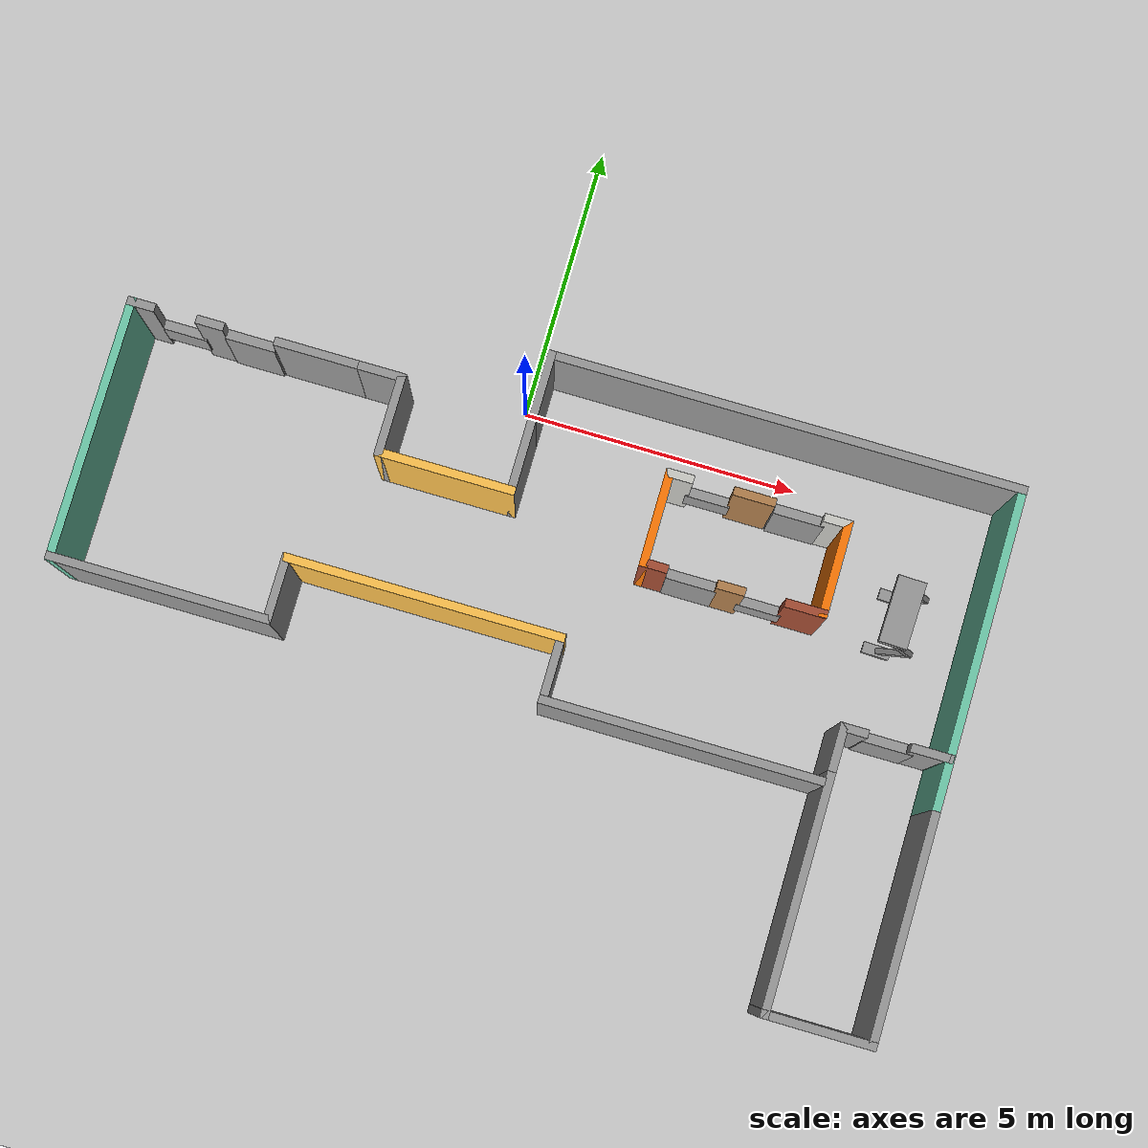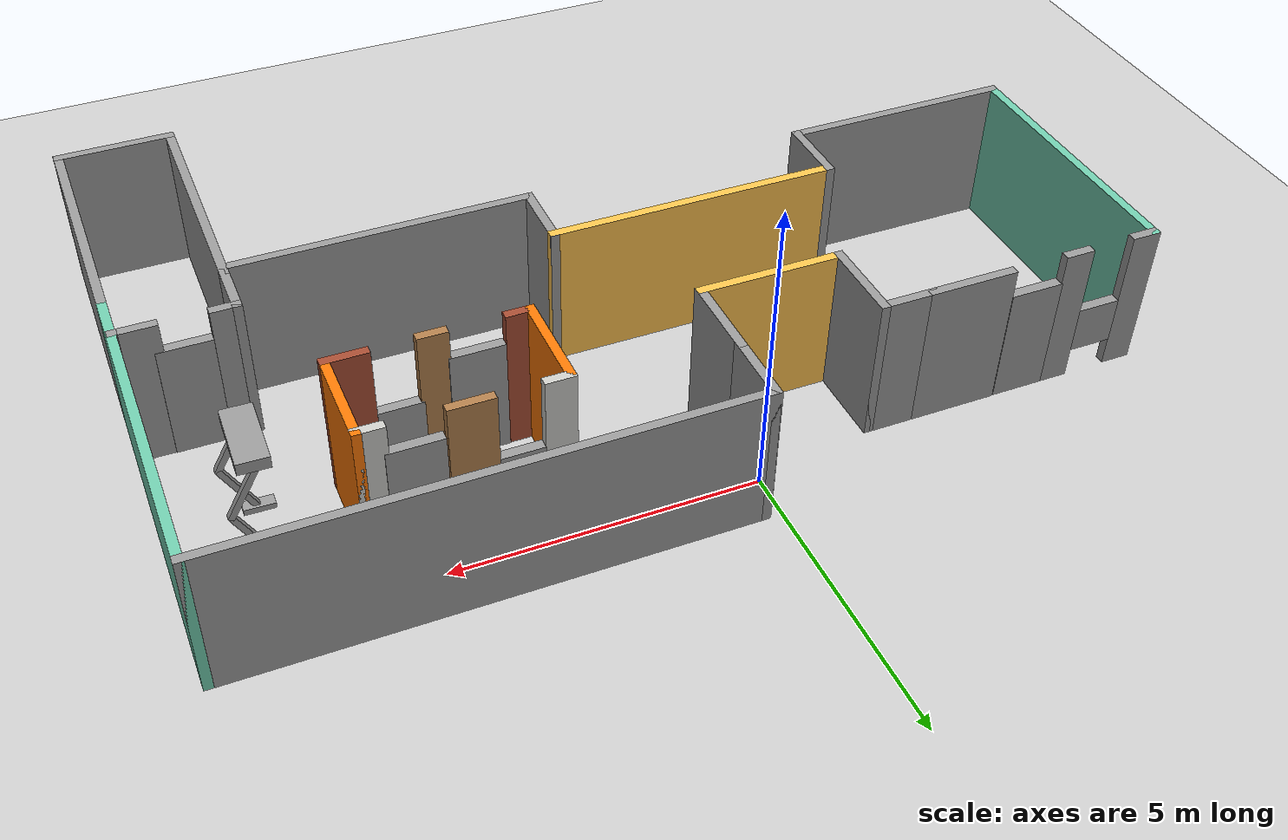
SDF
<sdf version="1.7">
 <world name="default">
  <model name="ground_plane">
   <static>1</static>
   <link name="link">
    <collision name="collision">
     <geometry><plane><normal>0 0 1</normal><size>100 100</size></plane></geometry>
     <surface>
      <contact><collide_bitmask>65535</collide_bitmask></contact>
      <friction><ode><mu>100</mu><mu2>50</mu2></ode></friction>
     </surface>
    </collision>
    <visual name="visual">
     <cast_shadows>0</cast_shadows>
     <geometry><plane><normal>0 0 1</normal><size>100 100</size></plane></geometry>
     <material>
      <script><uri>file://media/materials/scripts/gazebo.material</uri><name>Gazebo/Grey</name></script>
     </material>
    </visual>
   </link>
  </model>
  <model name="Building">
   <pose>0.849011 -4.17866 0 0 -0 0</pose>
   <link name="Door_0">
    <collision name="Door_0_Collision">
     <geometry><box><size>0.9 0.17 2</size></box></geometry>
     <pose>0 0 1 0 -0 0</pose>
    </collision>
    <visual name="Door_0_Visual">
     <pose>0 0 1 0 -0 0</pose>
     <geometry><box><size>0.9 0.17 2</size></box></geometry>
     <material>
      <script><uri>file://media/materials/scripts/gazebo.material</uri><name>Gazebo/Grey</name></script>
     </material>
    </visual>
    <pose>-5.67659 3.73172 0 0 -0 0</pose>
   </link>
   <link name="Door_1">
    <collision name="Door_1_Collision">
     <geometry><box><size>0.9 0.17 2</size></box></geometry>
     <pose>0 0 1 0 -0 0</pose>
    </collision>
    <visual name="Door_1_Visual">
     <pose>0 0 1 0 -0 0</pose>
     <geometry><box><size>0.9 0.17 2</size></box></geometry>
     <material>
      <script><uri>file://media/materials/scripts/gazebo.material</uri><name>Gazebo/Grey</name></script>
     </material>
    </visual>
    <pose>2.80479 1.84268 0 0 -0 0</pose>
   </link>
   <link name="Door_2">
    <collision name="Door_2_Collision">
     <geometry><box><size>0.9 0.17 2</size></box></geometry>
     <pose>0 0 1 0 -0 0</pose>
    </collision>
    <visual name="Door_2_Visual">
     <pose>0 0 1 0 -0 0</pose>
     <geometry><box><size>0.9 0.17 2</size></box></geometry>
     <material>
      <script><uri>file://media/materials/scripts/gazebo.material</uri><name>Gazebo/Grey</name></script>
     </material>
    </visual>
    <pose>4.27081 3.44109 0 0 -0 0</pose>
   </link>
   <link name="Door_3">
    <collision name="Door_3_Collision">
     <geometry><box><size>0.9 0.17 2</size></box></geometry>
     <pose>0 0 1 0 -0 0</pose>
    </collision>
    <visual name="Door_3_Visual">
     <pose>0 0 1 0 -0 0</pose>
     <geometry><box><size>0.9 0.17 2</size></box></geometry>
     <material>
      <script><uri>file://media/materials/scripts/gazebo.material</uri><name>Gazebo/Grey</name></script>
     </material>
    </visual>
    <pose>6.77567 0.089826 0 0 -0 0</pose>
   </link>
   <link name="Wall_0">
    <collision name="Wall_0_Collision">
     <geometry><box><size>4.75 0.15 2.5</size></box></geometry>
     <pose>0 0 1.25 0 -0 0</pose>
    </collision>
    <visual name="Wall_0_Visual">
     <pose>0 0 1.25 0 -0 0</pose>
     <geometry><box><size>4.75 0.15 2.5</size></box></geometry>
     <material>
      <script><uri>file://media/materials/scripts/gazebo.material</uri><name>Gazebo/Grey</name></script>
      <ambient>0.435294 0.796078 0.67451 1</ambient>
     </material>
     <meta><layer>0</layer></meta>
    </visual>
    <pose>-7.76657 1.42597 0 0 -0 -1.5708</pose>
   </link>
   <link name="Wall_1">
    <collision name="Wall_1_Collision">
     <geometry><box><size>4 0.15 2.5</size></box></geometry>
     <pose>0 0 1.25 0 -0 0</pose>
    </collision>
    <visual name="Wall_1_Visual">
     <pose>0 0 1.25 0 -0 0</pose>
     <geometry><box><size>4 0.15 2.5</size></box></geometry>
     <material>
      <script><uri>file://media/materials/scripts/gazebo.material</uri><name>Gazebo/Grey</name></script>
      <ambient>1 1 1 1</ambient>
     </material>
     <meta><layer>0</layer></meta>
    </visual>
    <pose>-5.84157 -0.874025 0 0 -0 0</pose>
   </link>
   <link name="Wall_11">
    <collision name="Wall_11_Collision">
     <geometry><box><size>1.5 0.15 2.5</size></box></geometry>
     <pose>0 0 1.25 0 -0 0</pose>
    </collision>
    <visual name="Wall_11_Visual">
     <pose>0 0 1.25 0 -0 0</pose>
     <geometry><box><size>1.5 0.15 2.5</size></box></geometry>
     <material>
      <script><uri>file://media/materials/scripts/gazebo.material</uri><name>Gazebo/Grey</name></script>
      <ambient>1 1 1 1</ambient>
     </material>
     <meta><layer>0</layer></meta>
    </visual>
    <pose>-4.45843 3.75 0 0 -0 0</pose>
   </link>
   <link name="Wall_12">
    <collision name="Wall_12_Collision">
     <geometry><box><size>1 0.15 2.5</size></box></geometry>
     <pose>0 0 1.25 0 -0 0</pose>
    </collision>
    <visual name="Wall_12_Visual">
     <pose>0 0 1.25 0 -0 0</pose>
     <geometry><box><size>1 0.15 2.5</size></box></geometry>
     <material>
      <script><uri>file://media/materials/scripts/gazebo.material</uri><name>Gazebo/Grey</name></script>
      <ambient>1 1 1 1</ambient>
     </material>
     <meta><layer>0</layer></meta>
    </visual>
    <pose>-3.35843 3.75 0 0 -0 0</pose>
   </link>
   <link name="Wall_13">
    <collision name="Wall_13_Collision">
     <geometry><box><size>1.5 0.15 2.5</size></box></geometry>
     <pose>0 0 1.25 0 -0 0</pose>
    </collision>
    <visual name="Wall_13_Visual">
     <pose>0 0 1.25 0 -0 0</pose>
     <geometry><box><size>1.5 0.15 2.5</size></box></geometry>
     <material>
      <script><uri>file://media/materials/scripts/gazebo.material</uri><name>Gazebo/Grey</name></script>
      <ambient>1 1 1 1</ambient>
     </material>
     <meta><layer>0</layer></meta>
    </visual>
    <pose>-2.93343 3.075 0 0 -0 -1.5708</pose>
   </link>
   <link name="Wall_14">
    <collision name="Wall_14_Collision">
     <geometry><box><size>2.5 0.15 2.5</size></box></geometry>
     <pose>0 0 1.25 0 -0 0</pose>
    </collision>
    <visual name="Wall_14_Visual">
     <pose>0 0 1.25 0 -0 0</pose>
     <geometry><box><size>2.5 0.15 2.5</size></box></geometry>
     <material>
      <script><uri>file://media/materials/scripts/gazebo.material</uri><name>Gazebo/Grey</name></script>
      <ambient>1 0.764706 0.305882 1</ambient>
     </material>
     <meta><layer>0</layer></meta>
    </visual>
    <pose>-1.75843 2.4 0 0 -0 0</pose>
   </link>
   <link name="Wall_15">
    <collision name="Wall_15_Collision">
     <geometry><box><size>1.5 0.15 2.5</size></box></geometry>
     <pose>0 0 1.25 0 -0 0</pose>
    </collision>
    <visual name="Wall_15_Visual">
     <pose>0 0 1.25 0 -0 0</pose>
     <geometry><box><size>1.5 0.15 2.5</size></box></geometry>
     <material>
      <script><uri>file://media/materials/scripts/gazebo.material</uri><name>Gazebo/Grey</name></script>
      <ambient>1 1 1 1</ambient>
     </material>
     <meta><layer>0</layer></meta>
    </visual>
    <pose>-0.583428 3.075 0 0 -0 1.5708</pose>
   </link>
   <link name="Wall_16">
    <collision name="Wall_16_Collision">
     <geometry><box><size>1.25 0.15 2.5</size></box></geometry>
     <pose>0 0 1.25 0 -0 0</pose>
    </collision>
    <visual name="Wall_16_Visual">
     <pose>0 0 1.25 0 -0 0</pose>
     <geometry><box><size>1.25 0.15 2.5</size></box></geometry>
     <material>
      <script><uri>file://media/materials/scripts/gazebo.material</uri><name>Gazebo/Grey</name></script>
      <ambient>1 1 1 1</ambient>
     </material>
     <meta><layer>0</layer></meta>
    </visual>
    <pose>-0.583428 4.3 0 0 -0 1.5708</pose>
   </link>
   <link name="Wall_17">
    <collision name="Wall_17_Collision">
     <geometry><box><size>8.5 0.15 2.5</size></box></geometry>
     <pose>0 0 1.25 0 -0 0</pose>
    </collision>
    <visual name="Wall_17_Visual">
     <pose>0 0 1.25 0 -0 0</pose>
     <geometry><box><size>8.5 0.15 2.5</size></box></geometry>
     <material>
      <script><uri>file://media/materials/scripts/gazebo.material</uri><name>Gazebo/Grey</name></script>
      <ambient>1 1 1 1</ambient>
     </material>
     <meta><layer>0</layer></meta>
    </visual>
    <pose>3.59157 4.85 0 0 -0 0</pose>
   </link>
   <link name="Wall_18">
    <collision name="Wall_18_Collision">
     <geometry><box><size>5.75 0.15 2.5</size></box></geometry>
     <pose>0 0 1.25 0 -0 0</pose>
    </collision>
    <visual name="Wall_18_Visual">
     <pose>0 0 1.25 0 -0 0</pose>
     <geometry><box><size>5.75 0.15 2.5</size></box></geometry>
     <material>
      <script><uri>file://media/materials/scripts/gazebo.material</uri><name>Gazebo/Grey</name></script>
      <ambient>0.435294 0.796078 0.67451 1</ambient>
     </material>
     <meta><layer>0</layer></meta>
    </visual>
    <pose>7.76657 2.05 0 0 -0 -1.5708</pose>
   </link>
   <link name="Wall_19">
    <collision name="Wall_19_Collision">
     <geometry><box><size>4.25 0.15 2.5</size></box></geometry>
     <pose>0 0 1.25 0 -0 0</pose>
    </collision>
    <visual name="Wall_19_Visual">
     <pose>0 0 1.25 0 -0 0</pose>
     <geometry><box><size>4.25 0.15 2.5</size></box></geometry>
     <material>
      <script><uri>file://media/materials/scripts/gazebo.material</uri><name>Gazebo/Grey</name></script>
      <ambient>1 1 1 1</ambient>
     </material>
     <meta><layer>0</layer></meta>
    </visual>
    <pose>7.76657 -2.8 0 0 -0 -1.5708</pose>
   </link>
   <link name="Wall_2">
    <collision name="Wall_2_Collision">
     <geometry><box><size>1.25 0.15 2.5</size></box></geometry>
     <pose>0 0 1.25 0 -0 0</pose>
    </collision>
    <visual name="Wall_2_Visual">
     <pose>0 0 1.25 0 -0 0</pose>
     <geometry><box><size>1.25 0.15 2.5</size></box></geometry>
     <material>
      <script><uri>file://media/materials/scripts/gazebo.material</uri><name>Gazebo/Grey</name></script>
      <ambient>1 1 1 1</ambient>
     </material>
     <meta><layer>0</layer></meta>
    </visual>
    <pose>-3.91657 -0.324024 0 0 -0 1.5708</pose>
   </link>
   <link name="Wall_20">
    <collision name="Wall_20_Collision">
     <geometry><box><size>2 0.15 2.5</size></box></geometry>
     <pose>0 0 1.25 0 -0 0</pose>
    </collision>
    <visual name="Wall_20_Visual">
     <pose>0 0 1.25 0 -0 0</pose>
     <geometry><box><size>2 0.15 2.5</size></box></geometry>
     <material>
      <script><uri>file://media/materials/scripts/gazebo.material</uri><name>Gazebo/Grey</name></script>
      <ambient>1 1 1 1</ambient>
     </material>
     <meta><layer>0</layer></meta>
    </visual>
    <pose>6.84157 -4.85 0 0 -0 3.14159</pose>
   </link>
   <link name="Wall_21">
    <collision name="Wall_21_Collision">
     <geometry><box><size>4.25 0.15 2.5</size></box></geometry>
     <pose>0 0 1.25 0 -0 0</pose>
    </collision>
    <visual name="Wall_21_Visual">
     <pose>0 0 1.25 0 -0 0</pose>
     <geometry><box><size>4.25 0.15 2.5</size></box></geometry>
     <material>
      <script><uri>file://media/materials/scripts/gazebo.material</uri><name>Gazebo/Grey</name></script>
      <ambient>1 1 1 1</ambient>
     </material>
     <meta><layer>0</layer></meta>
    </visual>
    <pose>5.91657 -2.8 0 0 -0 1.5708</pose>
   </link>
   <link name="Wall_23">
    <collision name="Wall_23_Collision">
     <geometry><box><size>0.5 0.15 2.5</size></box></geometry>
     <pose>0 0 1.25 0 -0 0</pose>
    </collision>
    <visual name="Wall_23_Visual">
     <pose>0 0 1.25 0 -0 0</pose>
     <geometry><box><size>0.5 0.15 2.5</size></box></geometry>
     <material>
      <script><uri>file://media/materials/scripts/gazebo.material</uri><name>Gazebo/Wood</name></script>
      <ambient>1 1 1 1</ambient>
     </material>
     <meta><layer>0</layer></meta>
    </visual>
    <pose>3.46611 1.83381 0 0 -0 0</pose>
   </link>
   <link name="Wall_25">
    <collision name="Wall_25_Collision">
     <geometry><box><size>0.75 0.15 2.5</size></box></geometry>
     <pose>0 0 1.25 0 -0 0</pose>
    </collision>
    <visual name="Wall_25_Visual">
     <pose>0 0 1.25 0 -0 0</pose>
     <geometry><box><size>0.75 0.15 2.5</size></box></geometry>
     <material>
      <script><uri>file://media/materials/scripts/gazebo.material</uri><name>Gazebo/Wood</name></script>
      <ambient>1 1 1 1</ambient>
     </material>
     <meta><layer>0</layer></meta>
    </visual>
    <pose>3.42586 3.45216 0 0 -0 0</pose>
   </link>
   <link name="Wall_27">
    <collision name="Wall_27_Collision">
     <geometry><box><size>0.5 0.15 2.5</size></box></geometry>
     <pose>0 0 1.25 0 -0 0</pose>
    </collision>
    <visual name="Wall_27_Visual">
     <pose>0 0 1.25 0 -0 0</pose>
     <geometry><box><size>0.5 0.15 2.5</size></box></geometry>
     <material>
      <script><uri>file://media/materials/scripts/gazebo.material</uri><name>Gazebo/CeilingTiled</name></script>
      <ambient>1 1 1 1</ambient>
     </material>
     <meta><layer>0</layer></meta>
    </visual>
    <pose>2.10086 3.44216 0 0 -0 3.14159</pose>
   </link>
   <link name="Wall_28">
    <collision name="Wall_28_Collision">
     <geometry><box><size>1.75 0.15 2.5</size></box></geometry>
     <pose>0 0 1.25 0 -0 0</pose>
    </collision>
    <visual name="Wall_28_Visual">
     <pose>0 0 1.25 0 -0 0</pose>
     <geometry><box><size>1.75 0.15 2.5</size></box></geometry>
     <material>
      <script><uri>file://media/materials/scripts/gazebo.material</uri><name>Gazebo/Grey</name></script>
      <ambient>0.996078 0.47451 0.0196078 1</ambient>
     </material>
     <meta><layer>0</layer></meta>
    </visual>
    <pose>1.92586 2.64216 0 0 -0 -1.5708</pose>
   </link>
   <link name="Wall_29">
    <collision name="Wall_29_Collision">
     <geometry><box><size>0.5 0.15 2.5</size></box></geometry>
     <pose>0 0 1.25 0 -0 0</pose>
    </collision>
    <visual name="Wall_29_Visual">
     <pose>0 0 1.25 0 -0 0</pose>
     <geometry><box><size>0.5 0.15 2.5</size></box></geometry>
     <material>
      <script><uri>file://media/materials/scripts/gazebo.material</uri><name>Gazebo/Bricks</name></script>
      <ambient>1 1 1 1</ambient>
     </material>
     <meta><layer>0</layer></meta>
    </visual>
    <pose>2.10086 1.84216 0 0 -0 0</pose>
   </link>
   <link name="Wall_3">
    <collision name="Wall_3_Collision">
     <geometry><box><size>5 0.15 2.5</size></box></geometry>
     <pose>0 0 1.25 0 -0 0</pose>
    </collision>
    <visual name="Wall_3_Visual">
     <pose>0 0 1.25 0 -0 0</pose>
     <geometry><box><size>5 0.15 2.5</size></box></geometry>
     <material>
      <script><uri>file://media/materials/scripts/gazebo.material</uri><name>Gazebo/Grey</name></script>
      <ambient>1 0.764706 0.305882 1</ambient>
     </material>
     <meta><layer>0</layer></meta>
    </visual>
    <pose>-1.49157 0.225975 0 0 -0 0</pose>
   </link>
   <link name="Wall_31">
    <collision name="Wall_31_Collision">
     <geometry><box><size>0.5 0.15 2.5</size></box></geometry>
     <pose>0 0 1.25 0 -0 0</pose>
    </collision>
    <visual name="Wall_31_Visual">
     <pose>0 0 1.25 0 -0 0</pose>
     <geometry><box><size>0.5 0.15 2.5</size></box></geometry>
     <material>
      <script><uri>file://media/materials/scripts/gazebo.material</uri><name>Gazebo/CeilingTiled</name></script>
      <ambient>1 1 1 1</ambient>
     </material>
     <meta><layer>0</layer></meta>
    </visual>
    <pose>4.90086 3.44216 0 0 -0 0</pose>
   </link>
   <link name="Wall_32">
    <collision name="Wall_32_Collision">
     <geometry><box><size>1.73 0.15 2.5</size></box></geometry>
     <pose>0 0 1.25 0 -0 0</pose>
    </collision>
    <visual name="Wall_32_Visual">
     <pose>0 0 1.25 0 -0 0</pose>
     <geometry><box><size>1.73 0.15 2.5</size></box></geometry>
     <material>
      <script><uri>file://media/materials/scripts/gazebo.material</uri><name>Gazebo/Grey</name></script>
      <ambient>0.996078 0.47451 0.0196078 1</ambient>
     </material>
     <meta><layer>0</layer></meta>
    </visual>
    <pose>5.07586 2.65216 0 0 -0 -1.5708</pose>
   </link>
   <link name="Wall_33">
    <collision name="Wall_33_Collision">
     <geometry><box><size>0.75 0.15 2.5</size></box></geometry>
     <pose>0 0 1.25 0 -0 0</pose>
    </collision>
    <visual name="Wall_33_Visual">
     <pose>0 0 1.25 0 -0 0</pose>
     <geometry><box><size>0.75 0.15 2.5</size></box></geometry>
     <material>
      <script><uri>file://media/materials/scripts/gazebo.material</uri><name>Gazebo/Bricks</name></script>
      <ambient>1 1 1 1</ambient>
     </material>
     <meta><layer>0</layer></meta>
    </visual>
    <pose>4.77586 1.85216 0 0 -0 3.14159</pose>
   </link>
   <link name="Wall_35">
    <collision name="Wall_35_Collision">
     <geometry><box><size>1 0.15 2.5</size></box></geometry>
     <pose>0 0 1.25 0 -0 0</pose>
    </collision>
    <visual name="Wall_35_Visual">
     <pose>0 0 1.25 0 -0 0</pose>
     <geometry><box><size>1 0.15 2.5</size></box></geometry>
     <material>
      <script><uri>file://media/materials/scripts/gazebo.material</uri><name>Gazebo/Grey</name></script>
      <ambient>1 1 1 1</ambient>
     </material>
     <meta><layer>0</layer></meta>
    </visual>
    <pose>5.91657 -0.325 0 0 -0 1.5708</pose>
   </link>
   <link name="Wall_36">
    <collision name="Wall_36_Collision">
     <geometry><box><size>0.5 0.15 2.5</size></box></geometry>
     <pose>0 0 1.25 0 -0 0</pose>
    </collision>
    <visual name="Wall_36_Visual">
     <pose>0 0 1.25 0 -0 0</pose>
     <geometry><box><size>0.5 0.15 2.5</size></box></geometry>
     <material>
      <script><uri>file://media/materials/scripts/gazebo.material</uri><name>Gazebo/Grey</name></script>
      <ambient>1 1 1 1</ambient>
     </material>
     <meta><layer>0</layer></meta>
    </visual>
    <pose>6.09157 0.1 0 0 -0 0</pose>
   </link>
   <link name="Wall_38">
    <collision name="Wall_38_Collision">
     <geometry><box><size>0.75 0.15 2.5</size></box></geometry>
     <pose>0 0 1.25 0 -0 0</pose>
    </collision>
    <visual name="Wall_38_Visual">
     <pose>0 0 1.25 0 -0 0</pose>
     <geometry><box><size>0.75 0.15 2.5</size></box></geometry>
     <material>
      <script><uri>file://media/materials/scripts/gazebo.material</uri><name>Gazebo/Grey</name></script>
      <ambient>1 1 1 1</ambient>
     </material>
     <meta><layer>0</layer></meta>
    </visual>
    <pose>7.45865 0.087042 0 0 -0 0</pose>
   </link>
   <link name="Wall_39">
    <collision name="Wall_39_Collision">
     <geometry><box><size>0.15 0.15 2.5</size></box></geometry>
     <pose>0 0 1.25 0 -0 0</pose>
    </collision>
    <visual name="Wall_39_Visual">
     <pose>0 0 1.25 0 -0 0</pose>
     <geometry><box><size>0.15 0.15 2.5</size></box></geometry>
     <material>
      <script><uri>file://media/materials/scripts/gazebo.material</uri><name>Gazebo/Grey</name></script>
      <ambient>1 1 1 1</ambient>
     </material>
     <meta><layer>0</layer></meta>
    </visual>
    <pose>7.74995 0.087042 0 0 -0 0</pose>
   </link>
   <link name="Wall_4">
    <collision name="Wall_4_Collision">
     <geometry><box><size>1.25 0.15 2.5</size></box></geometry>
     <pose>0 0 1.25 0 -0 0</pose>
    </collision>
    <visual name="Wall_4_Visual">
     <pose>0 0 1.25 0 -0 0</pose>
     <geometry><box><size>1.25 0.15 2.5</size></box></geometry>
     <material>
      <script><uri>file://media/materials/scripts/gazebo.material</uri><name>Gazebo/Grey</name></script>
      <ambient>1 1 1 1</ambient>
     </material>
     <meta><layer>0</layer></meta>
    </visual>
    <pose>0.933427 -0.324024 0 0 -0 -1.5708</pose>
   </link>
   <link name="Wall_40">
    <collision name="Wall_40_Collision">
     <geometry><box><size>0.15 0.15 2.5</size></box></geometry>
     <pose>0 0 1.25 0 -0 0</pose>
    </collision>
    <visual name="Wall_40_Visual">
     <pose>0 0 1.25 0 -0 0</pose>
     <geometry><box><size>0.15 0.15 2.5</size></box></geometry>
     <material>
      <script><uri>file://media/materials/scripts/gazebo.material</uri><name>Gazebo/Grey</name></script>
      <ambient>1 1 1 1</ambient>
     </material>
     <meta><layer>0</layer></meta>
    </visual>
    <pose>7.74995 0.087042 0 0 -0 0</pose>
   </link>
   <link name="Wall_41">
    <collision name="Wall_41_Collision">
     <geometry><box><size>0.15 0.15 2.5</size></box></geometry>
     <pose>0 0 1.25 0 -0 0</pose>
    </collision>
    <visual name="Wall_41_Visual">
     <pose>0 0 1.25 0 -0 0</pose>
     <geometry><box><size>0.15 0.15 2.5</size></box></geometry>
     <material>
      <script><uri>file://media/materials/scripts/gazebo.material</uri><name>Gazebo/Grey</name></script>
      <ambient>1 1 1 1</ambient>
     </material>
     <meta><layer>0</layer></meta>
    </visual>
    <pose>7.74995 0.087042 0 0 -0 0</pose>
   </link>
   <link name="Wall_5">
    <collision name="Wall_5_Collision">
     <geometry><box><size>5 0.15 2.5</size></box></geometry>
     <pose>0 0 1.25 0 -0 0</pose>
    </collision>
    <visual name="Wall_5_Visual">
     <pose>0 0 1.25 0 -0 0</pose>
     <geometry><box><size>5 0.15 2.5</size></box></geometry>
     <material>
      <script><uri>file://media/materials/scripts/gazebo.material</uri><name>Gazebo/Grey</name></script>
      <ambient>1 1 1 1</ambient>
     </material>
     <meta><layer>0</layer></meta>
    </visual>
    <pose>3.35843 -0.874025 0 0 -0 0</pose>
   </link>
   <link name="Wall_7">
    <collision name="Wall_7_Collision">
     <geometry><box><size>0.5 0.15 2.5</size></box></geometry>
     <pose>0 0 1.25 0 -0 0</pose>
    </collision>
    <visual name="Wall_7_Visual">
     <pose>0 0 1.25 0 -0 0</pose>
     <geometry><box><size>0.5 0.15 2.5</size></box></geometry>
     <material>
      <script><uri>file://media/materials/scripts/gazebo.material</uri><name>Gazebo/Grey</name></script>
      <ambient>1 1 1 1</ambient>
     </material>
     <meta><layer>0</layer></meta>
    </visual>
    <pose>-7.59157 3.72598 0 0 -0 0</pose>
   </link>
   <link name="Wall_9">
    <collision name="Wall_9_Collision">
     <geometry><box><size>0.5 0.15 2.5</size></box></geometry>
     <pose>0 0 1.25 0 -0 0</pose>
    </collision>
    <visual name="Wall_9_Visual">
     <pose>0 0 1.25 0 -0 0</pose>
     <geometry><box><size>0.5 0.15 2.5</size></box></geometry>
     <material>
      <script><uri>file://media/materials/scripts/gazebo.material</uri><name>Gazebo/Grey</name></script>
      <ambient>1 1 1 1</ambient>
     </material>
     <meta><layer>0</layer></meta>
    </visual>
    <pose>-6.35633 3.7397 0 0 -0 0</pose>
   </link>
   <link name="Window_0">
    <collision name="Window_0_Collision">
     <geometry><box><size>0.8 0.17 0.8</size></box></geometry>
     <pose>0 0 0.4 0 -0 0</pose>
    </collision>
    <visual name="Window_0_Visual">
     <pose>0 0 0.4 0 -0 0</pose>
     <geometry><box><size>0.8 0.17 0.8</size></box></geometry>
     <material>
      <script><uri>file://media/materials/scripts/gazebo.material</uri><name>Gazebo/Grey</name></script>
     </material>
    </visual>
    <pose>-6.94222 3.72169 0.5 0 -0 0</pose>
   </link>
   <link name="Window_1">
    <collision name="Window_1_Collision">
     <geometry><box><size>0.8 0.17 0.8</size></box></geometry>
     <pose>0 0 0.4 0 -0 0</pose>
    </collision>
    <visual name="Window_1_Visual">
     <pose>0 0 0.4 0 -0 0</pose>
     <geometry><box><size>0.8 0.17 0.8</size></box></geometry>
     <material>
      <script><uri>file://media/materials/scripts/gazebo.material</uri><name>Gazebo/Grey</name></script>
     </material>
    </visual>
    <pose>4.06227 1.84065 0.5 0 -0 0</pose>
   </link>
   <link name="Window_2">
    <collision name="Window_2_Collision">
     <geometry><box><size>0.8 0.17 0.8</size></box></geometry>
     <pose>0 0 0.4 0 -0 0</pose>
    </collision>
    <visual name="Window_2_Visual">
     <pose>0 0 0.4 0 -0 0</pose>
     <geometry><box><size>0.8 0.17 0.8</size></box></geometry>
     <material>
      <script><uri>file://media/materials/scripts/gazebo.material</uri><name>Gazebo/Grey</name></script>
     </material>
    </visual>
    <pose>2.6882 3.43109 0.5 0 -0 0</pose>
   </link>
   <static>1</static>
  </model>
  <model name="HumanoidRobot_0">
   <link name="link_0">
    <inertial>
     <mass>1</mass>
     <inertia>
      <ixx>0.166667</ixx>
      <ixy>0</ixy>
      <ixz>0</ixz>
      <iyy>0.166667</iyy>
      <iyz>0</iyz>
      <izz>0.166667</izz>
     </inertia>
    </inertial>
    <pose>-2.93875 -4.13679 -0.426059 0 -0 0</pose>
    <visual name="visual">
     <geometry><box><size>0.5 0.2 0.1</size></box></geometry>
     <material>
      <lighting>1</lighting>
      <script><uri>file://media/materials/scripts/gazebo.material</uri><name>Gazebo/Grey</name></script>
      <shader type="pixel"><normal_map>__default__</normal_map></shader>
      <ambient>0.3 0.3 0.3 1</ambient>
      <diffuse>0.7 0.7 0.7 1</diffuse>
      <specular>0.01 0.01 0.01 1</specular>
      <emissive>0 0 0 1</emissive>
     </material>
    </visual>
    <collision name="collision">
     <geometry><box><size>0.5 0.2 0.1</size></box></geometry>
     <surface>
      <friction>
       <ode><mu>1</mu><mu2>1</mu2><fdir1>0 0 0</fdir1><slip1>0</slip1><slip2>0</slip2></ode>
       <torsional>
        <coefficient>1</coefficient>
        <patch_radius>0</patch_radius>
        <surface_radius>0</surface_radius>
        <use_patch_radius>1</use_patch_radius>
        <ode><slip>0</slip></ode>
       </torsional>
      </friction>
      <bounce><restitution_coefficient>0</restitution_coefficient><threshold>1e+06</threshold></bounce>
      <contact>
       <collide_without_contact>0</collide_without_contact>
       <collide_without_contact_bitmask>1</collide_without_contact_bitmask>
       <collide_bitmask>1</collide_bitmask>
       <ode>
        <soft_cfm>0</soft_cfm>
        <soft_erp>0.2</soft_erp>
        <kp>1e+13</kp>
        <kd>1</kd>
        <max_vel>0.01</max_vel>
        <min_depth>0</min_depth>
       </ode>
       <bullet>
        <split_impulse>1</split_impulse>
        <split_impulse_penetration_threshold>-0.01</split_impulse_penetration_threshold>
        <soft_cfm>0</soft_cfm>
        <soft_erp>0.2</soft_erp>
        <kp>1e+13</kp>
        <kd>1</kd>
       </bullet>
      </contact>
     </surface>
    </collision>
   </link>
   <link name="link_0_clone">
    <inertial>
     <mass>1</mass>
     <inertia>
      <ixx>0.166667</ixx>
      <ixy>0</ixy>
      <ixz>0</ixz>
      <iyy>0.166667</iyy>
      <iyz>0</iyz>
      <izz>0.166667</izz>
     </inertia>
    </inertial>
    <pose>-2.93875 -3.13679 -0.426059 0 -0 0</pose>
    <visual name="visual">
     <geometry><box><size>0.5 0.2 0.1</size></box></geometry>
     <material>
      <lighting>1</lighting>
      <script><uri>file://media/materials/scripts/gazebo.material</uri><name>Gazebo/Grey</name></script>
      <shader type="pixel"><normal_map>__default__</normal_map></shader>
      <ambient>0.3 0.3 0.3 1</ambient>
      <diffuse>0.7 0.7 0.7 1</diffuse>
      <specular>0.01 0.01 0.01 1</specular>
      <emissive>0 0 0 1</emissive>
     </material>
    </visual>
    <collision name="collision">
     <geometry><box><size>0.5 0.2 0.1</size></box></geometry>
     <surface>
      <friction>
       <ode><mu>1</mu><mu2>1</mu2><fdir1>0 0 0</fdir1><slip1>0</slip1><slip2>0</slip2></ode>
       <torsional>
        <coefficient>1</coefficient>
        <patch_radius>0</patch_radius>
        <surface_radius>0</surface_radius>
        <use_patch_radius>1</use_patch_radius>
        <ode><slip>0</slip></ode>
       </torsional>
      </friction>
      <bounce><restitution_coefficient>0</restitution_coefficient><threshold>1e+06</threshold></bounce>
      <contact>
       <collide_without_contact>0</collide_without_contact>
       <collide_without_contact_bitmask>1</collide_without_contact_bitmask>
       <collide_bitmask>1</collide_bitmask>
       <ode>
        <soft_cfm>0</soft_cfm>
        <soft_erp>0.2</soft_erp>
        <kp>1e+13</kp>
        <kd>1</kd>
        <max_vel>0.01</max_vel>
        <min_depth>0</min_depth>
       </ode>
       <bullet>
        <split_impulse>1</split_impulse>
        <split_impulse_penetration_threshold>-0.01</split_impulse_penetration_threshold>
        <soft_cfm>0</soft_cfm>
        <soft_erp>0.2</soft_erp>
        <kp>1e+13</kp>
        <kd>1</kd>
       </bullet>
      </contact>
     </surface>
    </collision>
   </link>
   <link name="link_1">
    <inertial>
     <mass>1</mass>
     <inertia>
      <ixx>0.166667</ixx>
      <ixy>0</ixy>
      <ixz>0</ixz>
      <iyy>0.166667</iyy>
      <iyz>0</iyz>
      <izz>0.166667</izz>
     </inertia>
    </inertial>
    <pose>-2.68875 -4.13679 0.023941 0 0.5 0</pose>
    <visual name="visual">
     <geometry><box><size>0.1 0.1 1</size></box></geometry>
     <material>
      <lighting>1</lighting>
      <script><uri>file://media/materials/scripts/gazebo.material</uri><name>Gazebo/Grey</name></script>
      <shader type="pixel"><normal_map>__default__</normal_map></shader>
      <ambient>0.3 0.3 0.3 1</ambient>
      <diffuse>0.7 0.7 0.7 1</diffuse>
      <specular>0.01 0.01 0.01 1</specular>
      <emissive>0 0 0 1</emissive>
     </material>
    </visual>
    <collision name="collision">
     <geometry><box><size>0.1 0.1 1</size></box></geometry>
     <surface>
      <friction>
       <ode><mu>1</mu><mu2>1</mu2><fdir1>0 0 0</fdir1><slip1>0</slip1><slip2>0</slip2></ode>
       <torsional>
        <coefficient>1</coefficient>
        <patch_radius>0</patch_radius>
        <surface_radius>0</surface_radius>
        <use_patch_radius>1</use_patch_radius>
        <ode><slip>0</slip></ode>
       </torsional>
      </friction>
      <bounce><restitution_coefficient>0</restitution_coefficient><threshold>1e+06</threshold></bounce>
      <contact>
       <collide_without_contact>0</collide_without_contact>
       <collide_without_contact_bitmask>1</collide_without_contact_bitmask>
       <collide_bitmask>1</collide_bitmask>
       <ode>
        <soft_cfm>0</soft_cfm>
        <soft_erp>0.2</soft_erp>
        <kp>1e+13</kp>
        <kd>1</kd>
        <max_vel>0.01</max_vel>
        <min_depth>0</min_depth>
       </ode>
       <bullet>
        <split_impulse>1</split_impulse>
        <split_impulse_penetration_threshold>-0.01</split_impulse_penetration_threshold>
        <soft_cfm>0</soft_cfm>
        <soft_erp>0.2</soft_erp>
        <kp>1e+13</kp>
        <kd>1</kd>
       </bullet>
      </contact>
     </surface>
    </collision>
   </link>
   <link name="link_1_clone">
    <inertial>
     <mass>1</mass>
     <inertia>
      <ixx>0.166667</ixx>
      <ixy>0</ixy>
      <ixz>0</ixz>
      <iyy>0.166667</iyy>
      <iyz>0</iyz>
      <izz>0.166667</izz>
     </inertia>
    </inertial>
    <pose>-2.68875 -3.13679 0.023941 0 0.5 0</pose>
    <visual name="visual">
     <geometry><box><size>0.1 0.1 1</size></box></geometry>
     <material>
      <lighting>1</lighting>
      <script><uri>file://media/materials/scripts/gazebo.material</uri><name>Gazebo/Grey</name></script>
      <shader type="pixel"><normal_map>__default__</normal_map></shader>
      <ambient>0.3 0.3 0.3 1</ambient>
      <diffuse>0.7 0.7 0.7 1</diffuse>
      <specular>0.01 0.01 0.01 1</specular>
      <emissive>0 0 0 1</emissive>
     </material>
    </visual>
    <collision name="collision">
     <geometry><box><size>0.1 0.1 1</size></box></geometry>
     <surface>
      <friction>
       <ode><mu>1</mu><mu2>1</mu2><fdir1>0 0 0</fdir1><slip1>0</slip1><slip2>0</slip2></ode>
       <torsional>
        <coefficient>1</coefficient>
        <patch_radius>0</patch_radius>
        <surface_radius>0</surface_radius>
        <use_patch_radius>1</use_patch_radius>
        <ode><slip>0</slip></ode>
       </torsional>
      </friction>
      <bounce><restitution_coefficient>0</restitution_coefficient><threshold>1e+06</threshold></bounce>
      <contact>
       <collide_without_contact>0</collide_without_contact>
       <collide_without_contact_bitmask>1</collide_without_contact_bitmask>
       <collide_bitmask>1</collide_bitmask>
       <ode>
        <soft_cfm>0</soft_cfm>
        <soft_erp>0.2</soft_erp>
        <kp>1e+13</kp>
        <kd>1</kd>
        <max_vel>0.01</max_vel>
        <min_depth>0</min_depth>
       </ode>
       <bullet>
        <split_impulse>1</split_impulse>
        <split_impulse_penetration_threshold>-0.01</split_impulse_penetration_threshold>
        <soft_cfm>0</soft_cfm>
        <soft_erp>0.2</soft_erp>
        <kp>1e+13</kp>
        <kd>1</kd>
       </bullet>
      </contact>
     </surface>
    </collision>
   </link>
   <link name="link_2">
    <inertial>
     <mass>1</mass>
     <inertia>
      <ixx>0.166667</ixx>
      <ixy>0</ixy>
      <ixz>0</ixz>
      <iyy>0.166667</iyy>
      <iyz>0</iyz>
      <izz>0.166667</izz>
     </inertia>
    </inertial>
    <pose>-2.68022 -4.13679 0.873898 0 -0.5 0</pose>
    <visual name="visual">
     <geometry><box><size>0.1 0.1 1</size></box></geometry>
     <material>
      <lighting>1</lighting>
      <script><uri>file://media/materials/scripts/gazebo.material</uri><name>Gazebo/Grey</name></script>
      <shader type="pixel"><normal_map>__default__</normal_map></shader>
      <ambient>0.3 0.3 0.3 1</ambient>
      <diffuse>0.7 0.7 0.7 1</diffuse>
      <specular>0.01 0.01 0.01 1</specular>
      <emissive>0 0 0 1</emissive>
     </material>
    </visual>
    <collision name="collision">
     <geometry><box><size>0.1 0.1 1</size></box></geometry>
     <surface>
      <friction>
       <ode><mu>1</mu><mu2>1</mu2><fdir1>0 0 0</fdir1><slip1>0</slip1><slip2>0</slip2></ode>
       <torsional>
        <coefficient>1</coefficient>
        <patch_radius>0</patch_radius>
        <surface_radius>0</surface_radius>
        <use_patch_radius>1</use_patch_radius>
        <ode><slip>0</slip></ode>
       </torsional>
      </friction>
      <bounce><restitution_coefficient>0</restitution_coefficient><threshold>1e+06</threshold></bounce>
      <contact>
       <collide_without_contact>0</collide_without_contact>
       <collide_without_contact_bitmask>1</collide_without_contact_bitmask>
       <collide_bitmask>1</collide_bitmask>
       <ode>
        <soft_cfm>0</soft_cfm>
        <soft_erp>0.2</soft_erp>
        <kp>1e+13</kp>
        <kd>1</kd>
        <max_vel>0.01</max_vel>
        <min_depth>0</min_depth>
       </ode>
       <bullet>
        <split_impulse>1</split_impulse>
        <split_impulse_penetration_threshold>-0.01</split_impulse_penetration_threshold>
        <soft_cfm>0</soft_cfm>
        <soft_erp>0.2</soft_erp>
        <kp>1e+13</kp>
        <kd>1</kd>
       </bullet>
      </contact>
     </surface>
    </collision>
   </link>
   <link name="link_2_clone">
    <inertial>
     <mass>1</mass>
     <inertia>
      <ixx>0.166667</ixx>
      <ixy>0</ixy>
      <ixz>0</ixz>
      <iyy>0.166667</iyy>
      <iyz>0</iyz>
      <izz>0.166667</izz>
     </inertia>
    </inertial>
    <pose>-2.68022 -3.13679 0.873898 0 -0.5 0</pose>
    <visual name="visual">
     <geometry><box><size>0.1 0.1 1</size></box></geometry>
     <material>
      <lighting>1</lighting>
      <script><uri>file://media/materials/scripts/gazebo.material</uri><name>Gazebo/Grey</name></script>
      <shader type="pixel"><normal_map>__default__</normal_map></shader>
      <ambient>0.3 0.3 0.3 1</ambient>
      <diffuse>0.7 0.7 0.7 1</diffuse>
      <specular>0.01 0.01 0.01 1</specular>
      <emissive>0 0 0 1</emissive>
     </material>
    </visual>
    <collision name="collision">
     <geometry><box><size>0.1 0.1 1</size></box></geometry>
     <surface>
      <friction>
       <ode><mu>1</mu><mu2>1</mu2><fdir1>0 0 0</fdir1><slip1>0</slip1><slip2>0</slip2></ode>
       <torsional>
        <coefficient>1</coefficient>
        <patch_radius>0</patch_radius>
        <surface_radius>0</surface_radius>
        <use_patch_radius>1</use_patch_radius>
        <ode><slip>0</slip></ode>
       </torsional>
      </friction>
      <bounce><restitution_coefficient>0</restitution_coefficient><threshold>1e+06</threshold></bounce>
      <contact>
       <collide_without_contact>0</collide_without_contact>
       <collide_without_contact_bitmask>1</collide_without_contact_bitmask>
       <collide_bitmask>1</collide_bitmask>
       <ode>
        <soft_cfm>0</soft_cfm>
        <soft_erp>0.2</soft_erp>
        <kp>1e+13</kp>
        <kd>1</kd>
        <max_vel>0.01</max_vel>
        <min_depth>0</min_depth>
       </ode>
       <bullet>
        <split_impulse>1</split_impulse>
        <split_impulse_penetration_threshold>-0.01</split_impulse_penetration_threshold>
        <soft_cfm>0</soft_cfm>
        <soft_erp>0.2</soft_erp>
        <kp>1e+13</kp>
        <kd>1</kd>
       </bullet>
      </contact>
     </surface>
    </collision>
   </link>
   <link name="link_4">
    <inertial>
     <mass>1</mass>
     <inertia>
      <ixx>0.166667</ixx>
      <ixy>0</ixy>
      <ixz>0</ixz>
      <iyy>0.166667</iyy>
      <iyz>0</iyz>
      <izz>0.166667</izz>
     </inertia>
    </inertial>
    <pose>-2.87278 -3.62138 1.41019 0 -0 0</pose>
    <visual name="visual">
     <geometry><box><size>0.5 1.2 0.2</size></box></geometry>
     <material>
      <lighting>1</lighting>
      <script><uri>file://media/materials/scripts/gazebo.material</uri><name>Gazebo/Grey</name></script>
      <shader type="pixel"><normal_map>__default__</normal_map></shader>
      <ambient>0.3 0.3 0.3 1</ambient>
      <diffuse>0.7 0.7 0.7 1</diffuse>
      <specular>0.01 0.01 0.01 1</specular>
      <emissive>0 0 0 1</emissive>
     </material>
    </visual>
    <collision name="collision">
     <geometry><box><size>0.5 1.2 0.2</size></box></geometry>
     <surface>
      <friction>
       <ode><mu>1</mu><mu2>1</mu2><fdir1>0 0 0</fdir1><slip1>0</slip1><slip2>0</slip2></ode>
       <torsional>
        <coefficient>1</coefficient>
        <patch_radius>0</patch_radius>
        <surface_radius>0</surface_radius>
        <use_patch_radius>1</use_patch_radius>
        <ode><slip>0</slip></ode>
       </torsional>
      </friction>
      <bounce><restitution_coefficient>0</restitution_coefficient><threshold>1e+06</threshold></bounce>
      <contact>
       <collide_without_contact>0</collide_without_contact>
       <collide_without_contact_bitmask>1</collide_without_contact_bitmask>
       <collide_bitmask>1</collide_bitmask>
       <ode>
        <soft_cfm>0</soft_cfm>
        <soft_erp>0.2</soft_erp>
        <kp>1e+13</kp>
        <kd>1</kd>
        <max_vel>0.01</max_vel>
        <min_depth>0</min_depth>
       </ode>
       <bullet>
        <split_impulse>1</split_impulse>
        <split_impulse_penetration_threshold>-0.01</split_impulse_penetration_threshold>
        <soft_cfm>0</soft_cfm>
        <soft_erp>0.2</soft_erp>
        <kp>1e+13</kp>
        <kd>1</kd>
       </bullet>
      </contact>
     </surface>
    </collision>
   </link>
   <joint name="link_0_JOINT_1" type="revolute">
    <parent>link_0</parent>
    <child>link_1</child>
    <axis>
     <xyz>0 0 1</xyz>
     <limit>
      <lower>-1.79769e+308</lower>
      <upper>1.79769e+308</upper>
      <effort>-1</effort>
      <velocity>-1</velocity>
     </limit>
     <dynamics>
      <spring_reference>0</spring_reference>
      <spring_stiffness>0</spring_stiffness>
      <damping>0</damping>
     </dynamics>
    </axis>
    <physics>
     <ode><limit><cfm>0</cfm><erp>0.2</erp></limit><suspension><cfm>0</cfm><erp>0.2</erp></suspension></ode>
    </physics>
   </joint>
   <joint name="link_0_clone_JOINT_2" type="revolute">
    <parent>link_0_clone</parent>
    <child>link_1_clone</child>
    <axis>
     <xyz>0 0 1</xyz>
     <limit>
      <lower>-1.79769e+308</lower>
      <upper>1.79769e+308</upper>
      <effort>-1</effort>
      <velocity>-1</velocity>
     </limit>
     <dynamics>
      <spring_reference>0</spring_reference>
      <spring_stiffness>0</spring_stiffness>
      <damping>0</damping>
     </dynamics>
    </axis>
    <physics>
     <ode><limit><cfm>0</cfm><erp>0.2</erp></limit><suspension><cfm>0</cfm><erp>0.2</erp></suspension></ode>
    </physics>
   </joint>
   <joint name="link_1_JOINT_3" type="revolute">
    <parent>link_1</parent>
    <child>link_2</child>
    <axis>
     <xyz>0 0 1</xyz>
     <limit>
      <lower>-1.79769e+308</lower>
      <upper>1.79769e+308</upper>
      <effort>-1</effort>
      <velocity>-1</velocity>
     </limit>
     <dynamics>
      <spring_reference>0</spring_reference>
      <spring_stiffness>0</spring_stiffness>
      <damping>0</damping>
     </dynamics>
    </axis>
    <physics>
     <ode><limit><cfm>0</cfm><erp>0.2</erp></limit><suspension><cfm>0</cfm><erp>0.2</erp></suspension></ode>
    </physics>
   </joint>
   <joint name="link_1_clone_JOINT_4" type="revolute">
    <parent>link_1_clone</parent>
    <child>link_2_clone</child>
    <axis>
     <xyz>0 0 1</xyz>
     <limit>
      <lower>-1.79769e+308</lower>
      <upper>1.79769e+308</upper>
      <effort>-1</effort>
      <velocity>-1</velocity>
     </limit>
     <dynamics>
      <spring_reference>0</spring_reference>
      <spring_stiffness>0</spring_stiffness>
      <damping>0</damping>
     </dynamics>
    </axis>
    <physics>
     <ode><limit><cfm>0</cfm><erp>0.2</erp></limit><suspension><cfm>0</cfm><erp>0.2</erp></suspension></ode>
    </physics>
   </joint>
   <joint name="link_4_JOINT_6" type="revolute">
    <parent>link_4</parent>
    <child>link_2</child>
    <axis>
     <xyz>1 0 0</xyz>
     <limit>
      <lower>-1.79769e+308</lower>
      <upper>1.79769e+308</upper>
      <effort>-1</effort>
      <velocity>-1</velocity>
     </limit>
     <dynamics>
      <spring_reference>0</spring_reference>
      <spring_stiffness>0</spring_stiffness>
      <damping>0</damping>
     </dynamics>
    </axis>
    <physics>
     <ode><limit><cfm>0</cfm><erp>0.2</erp></limit><suspension><cfm>0</cfm><erp>0.2</erp></suspension></ode>
    </physics>
   </joint>
   <joint name="link_4_JOINT_7" type="revolute">
    <parent>link_4</parent>
    <child>link_2_clone</child>
    <axis>
     <xyz>1 0 0</xyz>
     <limit>
      <lower>-1.79769e+308</lower>
      <upper>1.79769e+308</upper>
      <effort>-1</effort>
      <velocity>-1</velocity>
     </limit>
     <dynamics>
      <spring_reference>0</spring_reference>
      <spring_stiffness>0</spring_stiffness>
      <damping>0</damping>
     </dynamics>
    </axis>
    <physics>
     <ode><limit><cfm>0</cfm><erp>0.2</erp></limit><suspension><cfm>0</cfm><erp>0.2</erp></suspension></ode>
    </physics>
   </joint>
   <static>0</static>
   <pose>10.235 1.68879 0.476036 -4e-06 -1e-06 -0.02969</pose>
  </model>
 </world>
</sdf>
